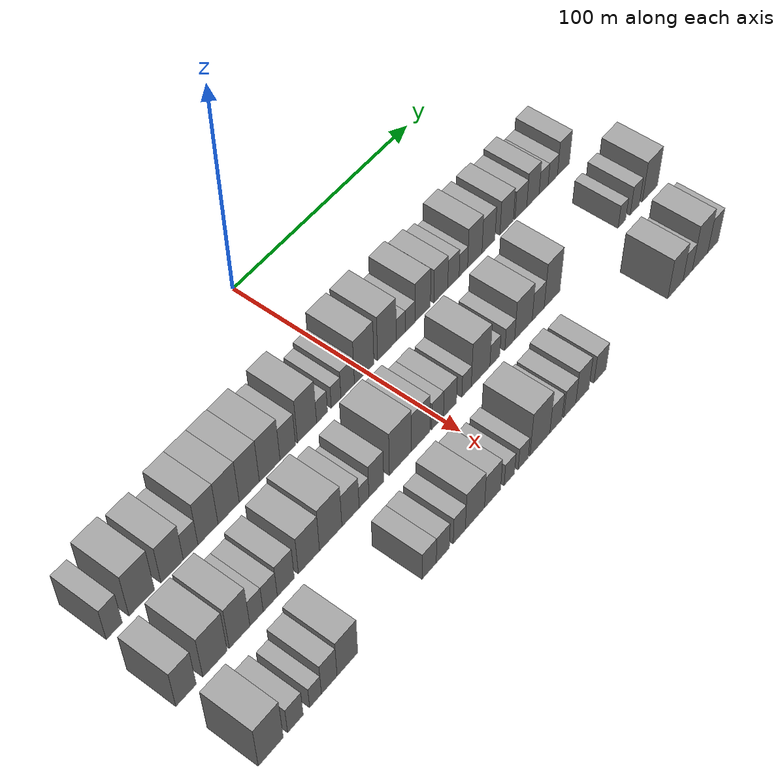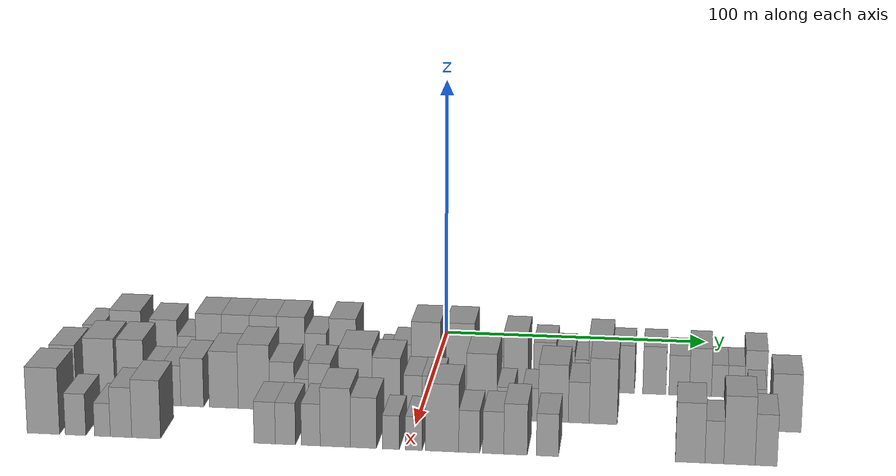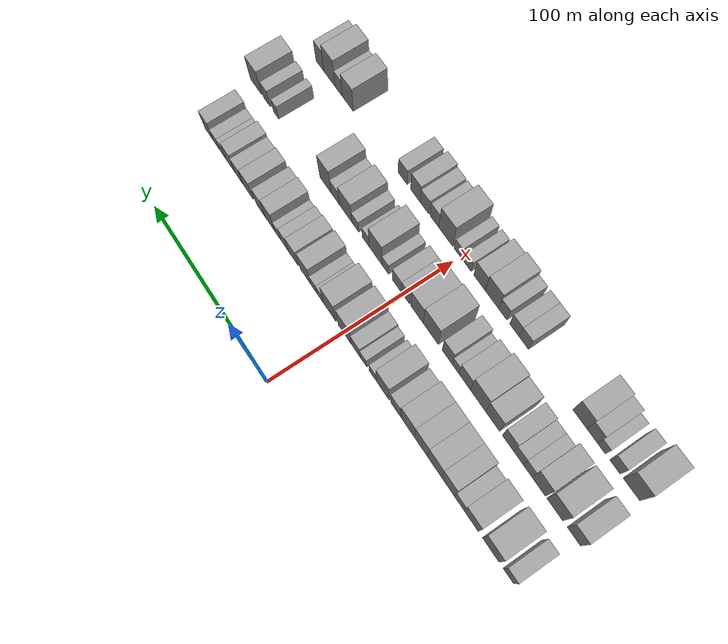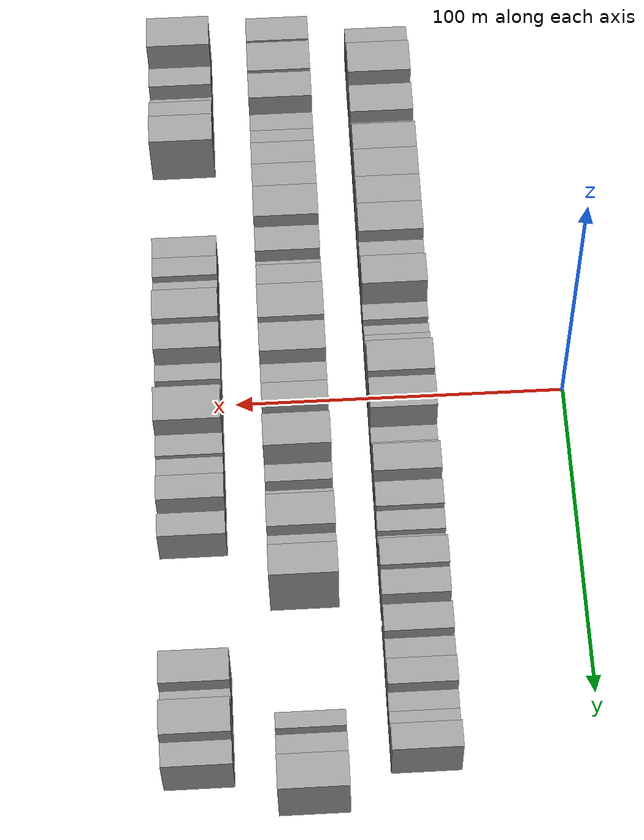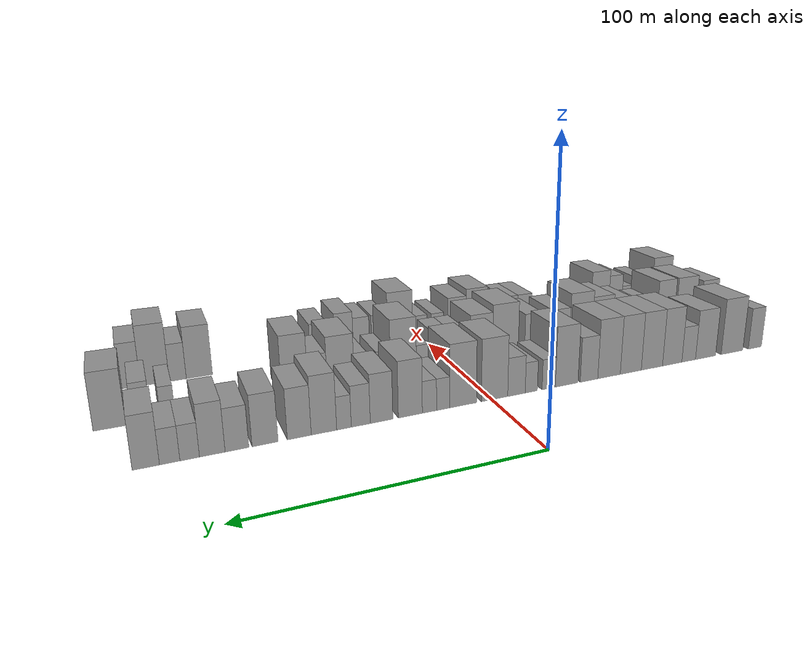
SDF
<sdf version="1.6">
 <world name="default">
  <model name="building_27">
   <static>1</static>
   <pose>50.0000 -124.7429 0 0.000000 0.000000 0.000000</pose>
   <link name="link">
    <pose>0 0 9.00 0 0 0</pose>
    <collision name="collision"><geometry><box><size>20.0000 7.2376 18.0000</size></box></geometry></collision>
    <visual name="visual">
     <cast_shadows>0</cast_shadows>
     <geometry><box><size>20.0000 7.2376 18.0000</size></box></geometry>
     <material>
      <script>
       <uri>model://grey_wall/materials/scripts</uri>
       <uri>model://grey_wall/materials/textures</uri>
       <name>vrc/grey_wall</name>
      </script>
     </material>
    </visual>
   </link>
  </model>
  <model name="building_28">
   <static>1</static>
   <pose>50.0000 -112.2866 0 0.000000 0.000000 0.000000</pose>
   <link name="link">
    <pose>0 0 12.00 0 0 0</pose>
    <collision name="collision"><geometry><box><size>20.0000 11.6752 24.0000</size></box></geometry></collision>
    <visual name="visual">
     <cast_shadows>0</cast_shadows>
     <geometry><box><size>20.0000 11.6752 24.0000</size></box></geometry>
     <material>
      <script>
       <uri>model://grey_wall/materials/scripts</uri>
       <uri>model://grey_wall/materials/textures</uri>
       <name>vrc/grey_wall</name>
      </script>
     </material>
    </visual>
   </link>
  </model>
  <model name="building_29">
   <static>1</static>
   <pose>50.0000 -98.2323 0 0.000000 0.000000 0.000000</pose>
   <link name="link">
    <pose>0 0 10.50 0 0 0</pose>
    <collision name="collision"><geometry><box><size>20.0000 10.4334 21.0000</size></box></geometry></collision>
    <visual name="visual">
     <cast_shadows>0</cast_shadows>
     <geometry><box><size>20.0000 10.4334 21.0000</size></box></geometry>
     <material>
      <script>
       <uri>model://grey_wall/materials/scripts</uri>
       <uri>model://grey_wall/materials/textures</uri>
       <name>vrc/grey_wall</name>
      </script>
     </material>
    </visual>
   </link>
  </model>
  <model name="building_30">
   <static>1</static>
   <pose>50.0000 -89.5312 0 0.000000 0.000000 0.000000</pose>
   <link name="link">
    <pose>0 0 7.50 0 0 0</pose>
    <collision name="collision"><geometry><box><size>20.0000 6.9687 15.0000</size></box></geometry></collision>
    <visual name="visual">
     <cast_shadows>0</cast_shadows>
     <geometry><box><size>20.0000 6.9687 15.0000</size></box></geometry>
     <material>
      <script>
       <uri>model://grey_wall/materials/scripts</uri>
       <uri>model://grey_wall/materials/textures</uri>
       <name>vrc/grey_wall</name>
      </script>
     </material>
    </visual>
   </link>
  </model>
  <model name="building_31">
   <static>1</static>
   <pose>50.0000 -81.2148 0 0.000000 0.000000 0.000000</pose>
   <link name="link">
    <pose>0 0 12.00 0 0 0</pose>
    <collision name="collision"><geometry><box><size>20.0000 9.6640 24.0000</size></box></geometry></collision>
    <visual name="visual">
     <cast_shadows>0</cast_shadows>
     <geometry><box><size>20.0000 9.6640 24.0000</size></box></geometry>
     <material>
      <script>
       <uri>model://grey_wall/materials/scripts</uri>
       <uri>model://grey_wall/materials/textures</uri>
       <name>vrc/grey_wall</name>
      </script>
     </material>
    </visual>
   </link>
  </model>
  <model name="building_32">
   <static>1</static>
   <pose>50.0000 -71.2039 0 0.000000 0.000000 0.000000</pose>
   <link name="link">
    <pose>0 0 12.00 0 0 0</pose>
    <collision name="collision"><geometry><box><size>20.0000 10.3579 24.0000</size></box></geometry></collision>
    <visual name="visual">
     <cast_shadows>0</cast_shadows>
     <geometry><box><size>20.0000 10.3579 24.0000</size></box></geometry>
     <material>
      <script>
       <uri>model://grey_wall/materials/scripts</uri>
       <uri>model://grey_wall/materials/textures</uri>
       <name>vrc/grey_wall</name>
      </script>
     </material>
    </visual>
   </link>
  </model>
  <model name="building_33">
   <static>1</static>
   <pose>50.0000 -61.0294 0 0.000000 0.000000 0.000000</pose>
   <link name="link">
    <pose>0 0 12.00 0 0 0</pose>
    <collision name="collision"><geometry><box><size>20.0000 9.9911 24.0000</size></box></geometry></collision>
    <visual name="visual">
     <cast_shadows>0</cast_shadows>
     <geometry><box><size>20.0000 9.9911 24.0000</size></box></geometry>
     <material>
      <script>
       <uri>model://grey_wall/materials/scripts</uri>
       <uri>model://grey_wall/materials/textures</uri>
       <name>vrc/grey_wall</name>
      </script>
     </material>
    </visual>
   </link>
  </model>
  <model name="building_34">
   <static>1</static>
   <pose>50.0000 -50.8119 0 0.000000 0.000000 0.000000</pose>
   <link name="link">
    <pose>0 0 12.00 0 0 0</pose>
    <collision name="collision"><geometry><box><size>20.0000 10.4438 24.0000</size></box></geometry></collision>
    <visual name="visual">
     <cast_shadows>0</cast_shadows>
     <geometry><box><size>20.0000 10.4438 24.0000</size></box></geometry>
     <material>
      <script>
       <uri>model://grey_wall/materials/scripts</uri>
       <uri>model://grey_wall/materials/textures</uri>
       <name>vrc/grey_wall</name>
      </script>
     </material>
    </visual>
   </link>
  </model>
  <model name="building_35">
   <static>1</static>
   <pose>50.0000 -41.6259 0 0.000000 0.000000 0.000000</pose>
   <link name="link">
    <pose>0 0 9.00 0 0 0</pose>
    <collision name="collision"><geometry><box><size>20.0000 7.9282 18.0000</size></box></geometry></collision>
    <visual name="visual">
     <cast_shadows>0</cast_shadows>
     <geometry><box><size>20.0000 7.9282 18.0000</size></box></geometry>
     <material>
      <script>
       <uri>model://grey_wall/materials/scripts</uri>
       <uri>model://grey_wall/materials/textures</uri>
       <name>vrc/grey_wall</name>
      </script>
     </material>
    </visual>
   </link>
  </model>
  <model name="building_36">
   <static>1</static>
   <pose>50.0000 -31.6741 0 0.000000 0.000000 0.000000</pose>
   <link name="link">
    <pose>0 0 12.00 0 0 0</pose>
    <collision name="collision"><geometry><box><size>20.0000 9.9756 24.0000</size></box></geometry></collision>
    <visual name="visual">
     <cast_shadows>0</cast_shadows>
     <geometry><box><size>20.0000 9.9756 24.0000</size></box></geometry>
     <material>
      <script>
       <uri>model://grey_wall/materials/scripts</uri>
       <uri>model://grey_wall/materials/textures</uri>
       <name>vrc/grey_wall</name>
      </script>
     </material>
    </visual>
   </link>
  </model>
  <model name="building_37">
   <static>1</static>
   <pose>50.0000 -23.8149 0 0.000000 0.000000 0.000000</pose>
   <link name="link">
    <pose>0 0 6.00 0 0 0</pose>
    <collision name="collision"><geometry><box><size>20.0000 5.7427 12.0000</size></box></geometry></collision>
    <visual name="visual">
     <cast_shadows>0</cast_shadows>
     <geometry><box><size>20.0000 5.7427 12.0000</size></box></geometry>
     <material>
      <script>
       <uri>model://grey_wall/materials/scripts</uri>
       <uri>model://grey_wall/materials/textures</uri>
       <name>vrc/grey_wall</name>
      </script>
     </material>
    </visual>
   </link>
  </model>
  <model name="building_38">
   <static>1</static>
   <pose>50.0000 -16.3730 0 0.000000 0.000000 0.000000</pose>
   <link name="link">
    <pose>0 0 6.00 0 0 0</pose>
    <collision name="collision"><geometry><box><size>20.0000 5.1412 12.0000</size></box></geometry></collision>
    <visual name="visual">
     <cast_shadows>0</cast_shadows>
     <geometry><box><size>20.0000 5.1412 12.0000</size></box></geometry>
     <material>
      <script>
       <uri>model://grey_wall/materials/scripts</uri>
       <uri>model://grey_wall/materials/textures</uri>
       <name>vrc/grey_wall</name>
      </script>
     </material>
    </visual>
   </link>
  </model>
  <model name="building_39">
   <static>1</static>
   <pose>50.0000 -10.1599 0 0.000000 0.000000 0.000000</pose>
   <link name="link">
    <pose>0 0 7.50 0 0 0</pose>
    <collision name="collision"><geometry><box><size>20.0000 7.2848 15.0000</size></box></geometry></collision>
    <visual name="visual">
     <cast_shadows>0</cast_shadows>
     <geometry><box><size>20.0000 7.2848 15.0000</size></box></geometry>
     <material>
      <script>
       <uri>model://grey_wall/materials/scripts</uri>
       <uri>model://grey_wall/materials/textures</uri>
       <name>vrc/grey_wall</name>
      </script>
     </material>
    </visual>
   </link>
  </model>
  <model name="building_40">
   <static>1</static>
   <pose>50.0000 -1.1866 0 0.000000 0.000000 0.000000</pose>
   <link name="link">
    <pose>0 0 12.00 0 0 0</pose>
    <collision name="collision"><geometry><box><size>20.0000 10.6619 24.0000</size></box></geometry></collision>
    <visual name="visual">
     <cast_shadows>0</cast_shadows>
     <geometry><box><size>20.0000 10.6619 24.0000</size></box></geometry>
     <material>
      <script>
       <uri>model://grey_wall/materials/scripts</uri>
       <uri>model://grey_wall/materials/textures</uri>
       <name>vrc/grey_wall</name>
      </script>
     </material>
    </visual>
   </link>
  </model>
  <model name="building_41">
   <static>1</static>
   <pose>50.0000 11.3441 0 0.000000 0.000000 0.000000</pose>
   <link name="link">
    <pose>0 0 12.00 0 0 0</pose>
    <collision name="collision"><geometry><box><size>20.0000 10.3995 24.0000</size></box></geometry></collision>
    <visual name="visual">
     <cast_shadows>0</cast_shadows>
     <geometry><box><size>20.0000 10.3995 24.0000</size></box></geometry>
     <material>
      <script>
       <uri>model://grey_wall/materials/scripts</uri>
       <uri>model://grey_wall/materials/textures</uri>
       <name>vrc/grey_wall</name>
      </script>
     </material>
    </visual>
   </link>
  </model>
  <model name="building_42">
   <static>1</static>
   <pose>50.0000 19.1152 0 0.000000 0.000000 0.000000</pose>
   <link name="link">
    <pose>0 0 6.00 0 0 0</pose>
    <collision name="collision"><geometry><box><size>20.0000 5.1427 12.0000</size></box></geometry></collision>
    <visual name="visual">
     <cast_shadows>0</cast_shadows>
     <geometry><box><size>20.0000 5.1427 12.0000</size></box></geometry>
     <material>
      <script>
       <uri>model://grey_wall/materials/scripts</uri>
       <uri>model://grey_wall/materials/textures</uri>
       <name>vrc/grey_wall</name>
      </script>
     </material>
    </visual>
   </link>
  </model>
  <model name="building_43">
   <static>1</static>
   <pose>50.0000 24.3787 0 0.000000 0.000000 0.000000</pose>
   <link name="link">
    <pose>0 0 6.00 0 0 0</pose>
    <collision name="collision"><geometry><box><size>20.0000 5.3844 12.0000</size></box></geometry></collision>
    <visual name="visual">
     <cast_shadows>0</cast_shadows>
     <geometry><box><size>20.0000 5.3844 12.0000</size></box></geometry>
     <material>
      <script>
       <uri>model://grey_wall/materials/scripts</uri>
       <uri>model://grey_wall/materials/textures</uri>
       <name>vrc/grey_wall</name>
      </script>
     </material>
    </visual>
   </link>
  </model>
  <model name="building_44">
   <static>1</static>
   <pose>50.0000 31.5155 0 0.000000 0.000000 0.000000</pose>
   <link name="link">
    <pose>0 0 10.50 0 0 0</pose>
    <collision name="collision"><geometry><box><size>20.0000 8.8890 21.0000</size></box></geometry></collision>
    <visual name="visual">
     <cast_shadows>0</cast_shadows>
     <geometry><box><size>20.0000 8.8890 21.0000</size></box></geometry>
     <material>
      <script>
       <uri>model://grey_wall/materials/scripts</uri>
       <uri>model://grey_wall/materials/textures</uri>
       <name>vrc/grey_wall</name>
      </script>
     </material>
    </visual>
   </link>
  </model>
  <model name="building_45">
   <static>1</static>
   <pose>50.0000 42.0223 0 0.000000 0.000000 0.000000</pose>
   <link name="link">
    <pose>0 0 9.00 0 0 0</pose>
    <collision name="collision"><geometry><box><size>20.0000 8.1246 18.0000</size></box></geometry></collision>
    <visual name="visual">
     <cast_shadows>0</cast_shadows>
     <geometry><box><size>20.0000 8.1246 18.0000</size></box></geometry>
     <material>
      <script>
       <uri>model://grey_wall/materials/scripts</uri>
       <uri>model://grey_wall/materials/textures</uri>
       <name>vrc/grey_wall</name>
      </script>
     </material>
    </visual>
   </link>
  </model>
  <model name="building_46">
   <static>1</static>
   <pose>50.0000 49.4293 0 0.000000 0.000000 0.000000</pose>
   <link name="link">
    <pose>0 0 7.50 0 0 0</pose>
    <collision name="collision"><geometry><box><size>20.0000 6.6894 15.0000</size></box></geometry></collision>
    <visual name="visual">
     <cast_shadows>0</cast_shadows>
     <geometry><box><size>20.0000 6.6894 15.0000</size></box></geometry>
     <material>
      <script>
       <uri>model://grey_wall/materials/scripts</uri>
       <uri>model://grey_wall/materials/textures</uri>
       <name>vrc/grey_wall</name>
      </script>
     </material>
    </visual>
   </link>
  </model>
  <model name="building_47">
   <static>1</static>
   <pose>50.0000 55.2964 0 0.000000 0.000000 0.000000</pose>
   <link name="link">
    <pose>0 0 6.00 0 0 0</pose>
    <collision name="collision"><geometry><box><size>20.0000 5.0448 12.0000</size></box></geometry></collision>
    <visual name="visual">
     <cast_shadows>0</cast_shadows>
     <geometry><box><size>20.0000 5.0448 12.0000</size></box></geometry>
     <material>
      <script>
       <uri>model://grey_wall/materials/scripts</uri>
       <uri>model://grey_wall/materials/textures</uri>
       <name>vrc/grey_wall</name>
      </script>
     </material>
    </visual>
   </link>
  </model>
  <model name="building_48">
   <static>1</static>
   <pose>50.0000 62.1322 0 0.000000 0.000000 0.000000</pose>
   <link name="link">
    <pose>0 0 10.50 0 0 0</pose>
    <collision name="collision"><geometry><box><size>20.0000 8.6267 21.0000</size></box></geometry></collision>
    <visual name="visual">
     <cast_shadows>0</cast_shadows>
     <geometry><box><size>20.0000 8.6267 21.0000</size></box></geometry>
     <material>
      <script>
       <uri>model://grey_wall/materials/scripts</uri>
       <uri>model://grey_wall/materials/textures</uri>
       <name>vrc/grey_wall</name>
      </script>
     </material>
    </visual>
   </link>
  </model>
  <model name="building_49">
   <static>1</static>
   <pose>50.0000 70.4046 0 0.000000 0.000000 0.000000</pose>
   <link name="link">
    <pose>0 0 9.00 0 0 0</pose>
    <collision name="collision"><geometry><box><size>20.0000 7.9182 18.0000</size></box></geometry></collision>
    <visual name="visual">
     <cast_shadows>0</cast_shadows>
     <geometry><box><size>20.0000 7.9182 18.0000</size></box></geometry>
     <material>
      <script>
       <uri>model://grey_wall/materials/scripts</uri>
       <uri>model://grey_wall/materials/textures</uri>
       <name>vrc/grey_wall</name>
      </script>
     </material>
    </visual>
   </link>
  </model>
  <model name="building_50">
   <static>1</static>
   <pose>50.0000 81.5215 0 0.000000 0.000000 0.000000</pose>
   <link name="link">
    <pose>0 0 9.00 0 0 0</pose>
    <collision name="collision"><geometry><box><size>20.0000 8.3154 18.0000</size></box></geometry></collision>
    <visual name="visual">
     <cast_shadows>0</cast_shadows>
     <geometry><box><size>20.0000 8.3154 18.0000</size></box></geometry>
     <material>
      <script>
       <uri>model://grey_wall/materials/scripts</uri>
       <uri>model://grey_wall/materials/textures</uri>
       <name>vrc/grey_wall</name>
      </script>
     </material>
    </visual>
   </link>
  </model>
  <model name="building_51">
   <static>1</static>
   <pose>50.0000 90.3698 0 0.000000 0.000000 0.000000</pose>
   <link name="link">
    <pose>0 0 7.50 0 0 0</pose>
    <collision name="collision"><geometry><box><size>20.0000 7.3812 15.0000</size></box></geometry></collision>
    <visual name="visual">
     <cast_shadows>0</cast_shadows>
     <geometry><box><size>20.0000 7.3812 15.0000</size></box></geometry>
     <material>
      <script>
       <uri>model://grey_wall/materials/scripts</uri>
       <uri>model://grey_wall/materials/textures</uri>
       <name>vrc/grey_wall</name>
      </script>
     </material>
    </visual>
   </link>
  </model>
  <model name="building_52">
   <static>1</static>
   <pose>50.0000 97.9597 0 0.000000 0.000000 0.000000</pose>
   <link name="link">
    <pose>0 0 9.00 0 0 0</pose>
    <collision name="collision"><geometry><box><size>20.0000 7.7986 18.0000</size></box></geometry></collision>
    <visual name="visual">
     <cast_shadows>0</cast_shadows>
     <geometry><box><size>20.0000 7.7986 18.0000</size></box></geometry>
     <material>
      <script>
       <uri>model://grey_wall/materials/scripts</uri>
       <uri>model://grey_wall/materials/textures</uri>
       <name>vrc/grey_wall</name>
      </script>
     </material>
    </visual>
   </link>
  </model>
  <model name="building_53">
   <static>1</static>
   <pose>50.0000 104.7630 0 0.000000 0.000000 0.000000</pose>
   <link name="link">
    <pose>0 0 6.00 0 0 0</pose>
    <collision name="collision"><geometry><box><size>20.0000 5.8080 12.0000</size></box></geometry></collision>
    <visual name="visual">
     <cast_shadows>0</cast_shadows>
     <geometry><box><size>20.0000 5.8080 12.0000</size></box></geometry>
     <material>
      <script>
       <uri>model://grey_wall/materials/scripts</uri>
       <uri>model://grey_wall/materials/textures</uri>
       <name>vrc/grey_wall</name>
      </script>
     </material>
    </visual>
   </link>
  </model>
  <model name="building_54">
   <static>1</static>
   <pose>50.0000 110.6468 0 0.000000 0.000000 0.000000</pose>
   <link name="link">
    <pose>0 0 6.00 0 0 0</pose>
    <collision name="collision"><geometry><box><size>20.0000 5.9596 12.0000</size></box></geometry></collision>
    <visual name="visual">
     <cast_shadows>0</cast_shadows>
     <geometry><box><size>20.0000 5.9596 12.0000</size></box></geometry>
     <material>
      <script>
       <uri>model://grey_wall/materials/scripts</uri>
       <uri>model://grey_wall/materials/textures</uri>
       <name>vrc/grey_wall</name>
      </script>
     </material>
    </visual>
   </link>
  </model>
  <model name="building_55">
   <static>1</static>
   <pose>50.0000 117.5337 0 0.000000 0.000000 0.000000</pose>
   <link name="link">
    <pose>0 0 9.00 0 0 0</pose>
    <collision name="collision"><geometry><box><size>20.0000 7.8141 18.0000</size></box></geometry></collision>
    <visual name="visual">
     <cast_shadows>0</cast_shadows>
     <geometry><box><size>20.0000 7.8141 18.0000</size></box></geometry>
     <material>
      <script>
       <uri>model://grey_wall/materials/scripts</uri>
       <uri>model://grey_wall/materials/textures</uri>
       <name>vrc/grey_wall</name>
      </script>
     </material>
    </visual>
   </link>
  </model>
  <model name="building_104">
   <static>1</static>
   <pose>82.0000 -127.3911 0 0.000000 0.000000 0.000000</pose>
   <link name="link">
    <pose>0 0 10.50 0 0 0</pose>
    <collision name="collision"><geometry><box><size>20.0000 9.1930 21.0000</size></box></geometry></collision>
    <visual name="visual">
     <cast_shadows>0</cast_shadows>
     <geometry><box><size>20.0000 9.1930 21.0000</size></box></geometry>
     <material>
      <script>
       <uri>model://grey_wall/materials/scripts</uri>
       <uri>model://grey_wall/materials/textures</uri>
       <name>vrc/grey_wall</name>
      </script>
     </material>
    </visual>
   </link>
  </model>
  <model name="building_105">
   <static>1</static>
   <pose>82.0000 -114.2026 0 0.000000 0.000000 0.000000</pose>
   <link name="link">
    <pose>0 0 12.00 0 0 0</pose>
    <collision name="collision"><geometry><box><size>20.0000 11.1840 24.0000</size></box></geometry></collision>
    <visual name="visual">
     <cast_shadows>0</cast_shadows>
     <geometry><box><size>20.0000 11.1840 24.0000</size></box></geometry>
     <material>
      <script>
       <uri>model://grey_wall/materials/scripts</uri>
       <uri>model://grey_wall/materials/textures</uri>
       <name>vrc/grey_wall</name>
      </script>
     </material>
    </visual>
   </link>
  </model>
  <model name="building_106">
   <static>1</static>
   <pose>82.0000 -102.7781 0 0.000000 0.000000 0.000000</pose>
   <link name="link">
    <pose>0 0 12.00 0 0 0</pose>
    <collision name="collision"><geometry><box><size>20.0000 9.6650 24.0000</size></box></geometry></collision>
    <visual name="visual">
     <cast_shadows>0</cast_shadows>
     <geometry><box><size>20.0000 9.6650 24.0000</size></box></geometry>
     <material>
      <script>
       <uri>model://grey_wall/materials/scripts</uri>
       <uri>model://grey_wall/materials/textures</uri>
       <name>vrc/grey_wall</name>
      </script>
     </material>
    </visual>
   </link>
  </model>
  <model name="building_107">
   <static>1</static>
   <pose>82.0000 -94.7876 0 0.000000 0.000000 0.000000</pose>
   <link name="link">
    <pose>0 0 7.50 0 0 0</pose>
    <collision name="collision"><geometry><box><size>20.0000 6.3161 15.0000</size></box></geometry></collision>
    <visual name="visual">
     <cast_shadows>0</cast_shadows>
     <geometry><box><size>20.0000 6.3161 15.0000</size></box></geometry>
     <material>
      <script>
       <uri>model://grey_wall/materials/scripts</uri>
       <uri>model://grey_wall/materials/textures</uri>
       <name>vrc/grey_wall</name>
      </script>
     </material>
    </visual>
   </link>
  </model>
  <model name="building_108">
   <static>1</static>
   <pose>82.0000 -88.2394 0 0.000000 0.000000 0.000000</pose>
   <link name="link">
    <pose>0 0 7.50 0 0 0</pose>
    <collision name="collision"><geometry><box><size>20.0000 6.7803 15.0000</size></box></geometry></collision>
    <visual name="visual">
     <cast_shadows>0</cast_shadows>
     <geometry><box><size>20.0000 6.7803 15.0000</size></box></geometry>
     <material>
      <script>
       <uri>model://grey_wall/materials/scripts</uri>
       <uri>model://grey_wall/materials/textures</uri>
       <name>vrc/grey_wall</name>
      </script>
     </material>
    </visual>
   </link>
  </model>
  <model name="building_109">
   <static>1</static>
   <pose>82.0000 -80.7230 0 0.000000 0.000000 0.000000</pose>
   <link name="link">
    <pose>0 0 9.00 0 0 0</pose>
    <collision name="collision"><geometry><box><size>20.0000 8.2525 18.0000</size></box></geometry></collision>
    <visual name="visual">
     <cast_shadows>0</cast_shadows>
     <geometry><box><size>20.0000 8.2525 18.0000</size></box></geometry>
     <material>
      <script>
       <uri>model://grey_wall/materials/scripts</uri>
       <uri>model://grey_wall/materials/textures</uri>
       <name>vrc/grey_wall</name>
      </script>
     </material>
    </visual>
   </link>
  </model>
  <model name="building_110">
   <static>1</static>
   <pose>82.0000 -69.3769 0 0.000000 0.000000 0.000000</pose>
   <link name="link">
    <pose>0 0 10.50 0 0 0</pose>
    <collision name="collision"><geometry><box><size>20.0000 10.4397 21.0000</size></box></geometry></collision>
    <visual name="visual">
     <cast_shadows>0</cast_shadows>
     <geometry><box><size>20.0000 10.4397 21.0000</size></box></geometry>
     <material>
      <script>
       <uri>model://grey_wall/materials/scripts</uri>
       <uri>model://grey_wall/materials/textures</uri>
       <name>vrc/grey_wall</name>
      </script>
     </material>
    </visual>
   </link>
  </model>
  <model name="building_111">
   <static>1</static>
   <pose>82.0000 -58.5042 0 0.000000 0.000000 0.000000</pose>
   <link name="link">
    <pose>0 0 12.00 0 0 0</pose>
    <collision name="collision"><geometry><box><size>20.0000 11.3055 24.0000</size></box></geometry></collision>
    <visual name="visual">
     <cast_shadows>0</cast_shadows>
     <geometry><box><size>20.0000 11.3055 24.0000</size></box></geometry>
     <material>
      <script>
       <uri>model://grey_wall/materials/scripts</uri>
       <uri>model://grey_wall/materials/textures</uri>
       <name>vrc/grey_wall</name>
      </script>
     </material>
    </visual>
   </link>
  </model>
  <model name="building_112">
   <static>1</static>
   <pose>82.0000 -48.4454 0 0.000000 0.000000 0.000000</pose>
   <link name="link">
    <pose>0 0 9.00 0 0 0</pose>
    <collision name="collision"><geometry><box><size>20.0000 8.8121 18.0000</size></box></geometry></collision>
    <visual name="visual">
     <cast_shadows>0</cast_shadows>
     <geometry><box><size>20.0000 8.8121 18.0000</size></box></geometry>
     <material>
      <script>
       <uri>model://grey_wall/materials/scripts</uri>
       <uri>model://grey_wall/materials/textures</uri>
       <name>vrc/grey_wall</name>
      </script>
     </material>
    </visual>
   </link>
  </model>
  <model name="building_113">
   <static>1</static>
   <pose>82.0000 -41.4940 0 0.000000 0.000000 0.000000</pose>
   <link name="link">
    <pose>0 0 6.00 0 0 0</pose>
    <collision name="collision"><geometry><box><size>20.0000 5.0907 12.0000</size></box></geometry></collision>
    <visual name="visual">
     <cast_shadows>0</cast_shadows>
     <geometry><box><size>20.0000 5.0907 12.0000</size></box></geometry>
     <material>
      <script>
       <uri>model://grey_wall/materials/scripts</uri>
       <uri>model://grey_wall/materials/textures</uri>
       <name>vrc/grey_wall</name>
      </script>
     </material>
    </visual>
   </link>
  </model>
  <model name="building_114">
   <static>1</static>
   <pose>82.0000 -35.0647 0 0.000000 0.000000 0.000000</pose>
   <link name="link">
    <pose>0 0 9.00 0 0 0</pose>
    <collision name="collision"><geometry><box><size>20.0000 7.7679 18.0000</size></box></geometry></collision>
    <visual name="visual">
     <cast_shadows>0</cast_shadows>
     <geometry><box><size>20.0000 7.7679 18.0000</size></box></geometry>
     <material>
      <script>
       <uri>model://grey_wall/materials/scripts</uri>
       <uri>model://grey_wall/materials/textures</uri>
       <name>vrc/grey_wall</name>
      </script>
     </material>
    </visual>
   </link>
  </model>
  <model name="building_115">
   <static>1</static>
   <pose>82.0000 -22.2854 0 0.000000 0.000000 0.000000</pose>
   <link name="link">
    <pose>0 0 12.00 0 0 0</pose>
    <collision name="collision"><geometry><box><size>20.0000 11.7908 24.0000</size></box></geometry></collision>
    <visual name="visual">
     <cast_shadows>0</cast_shadows>
     <geometry><box><size>20.0000 11.7908 24.0000</size></box></geometry>
     <material>
      <script>
       <uri>model://grey_wall/materials/scripts</uri>
       <uri>model://grey_wall/materials/textures</uri>
       <name>vrc/grey_wall</name>
      </script>
     </material>
    </visual>
   </link>
  </model>
  <model name="building_116">
   <static>1</static>
   <pose>82.0000 -11.3780 0 0.000000 0.000000 0.000000</pose>
   <link name="link">
    <pose>0 0 10.50 0 0 0</pose>
    <collision name="collision"><geometry><box><size>20.0000 10.0240 21.0000</size></box></geometry></collision>
    <visual name="visual">
     <cast_shadows>0</cast_shadows>
     <geometry><box><size>20.0000 10.0240 21.0000</size></box></geometry>
     <material>
      <script>
       <uri>model://grey_wall/materials/scripts</uri>
       <uri>model://grey_wall/materials/textures</uri>
       <name>vrc/grey_wall</name>
      </script>
     </material>
    </visual>
   </link>
  </model>
  <model name="building_117">
   <static>1</static>
   <pose>82.0000 -2.1191 0 0.000000 0.000000 0.000000</pose>
   <link name="link">
    <pose>0 0 7.50 0 0 0</pose>
    <collision name="collision"><geometry><box><size>20.0000 6.4938 15.0000</size></box></geometry></collision>
    <visual name="visual">
     <cast_shadows>0</cast_shadows>
     <geometry><box><size>20.0000 6.4938 15.0000</size></box></geometry>
     <material>
      <script>
       <uri>model://grey_wall/materials/scripts</uri>
       <uri>model://grey_wall/materials/textures</uri>
       <name>vrc/grey_wall</name>
      </script>
     </material>
    </visual>
   </link>
  </model>
  <model name="building_118">
   <static>1</static>
   <pose>82.0000 4.7765 0 0.000000 0.000000 0.000000</pose>
   <link name="link">
    <pose>0 0 7.50 0 0 0</pose>
    <collision name="collision"><geometry><box><size>20.0000 7.2974 15.0000</size></box></geometry></collision>
    <visual name="visual">
     <cast_shadows>0</cast_shadows>
     <geometry><box><size>20.0000 7.2974 15.0000</size></box></geometry>
     <material>
      <script>
       <uri>model://grey_wall/materials/scripts</uri>
       <uri>model://grey_wall/materials/textures</uri>
       <name>vrc/grey_wall</name>
      </script>
     </material>
    </visual>
   </link>
  </model>
  <model name="building_119">
   <static>1</static>
   <pose>82.0000 14.0890 0 0.000000 0.000000 0.000000</pose>
   <link name="link">
    <pose>0 0 6.00 0 0 0</pose>
    <collision name="collision"><geometry><box><size>20.0000 5.3276 12.0000</size></box></geometry></collision>
    <visual name="visual">
     <cast_shadows>0</cast_shadows>
     <geometry><box><size>20.0000 5.3276 12.0000</size></box></geometry>
     <material>
      <script>
       <uri>model://grey_wall/materials/scripts</uri>
       <uri>model://grey_wall/materials/textures</uri>
       <name>vrc/grey_wall</name>
      </script>
     </material>
    </visual>
   </link>
  </model>
  <model name="building_120">
   <static>1</static>
   <pose>82.0000 22.0814 0 0.000000 0.000000 0.000000</pose>
   <link name="link">
    <pose>0 0 12.00 0 0 0</pose>
    <collision name="collision"><geometry><box><size>20.0000 10.6571 24.0000</size></box></geometry></collision>
    <visual name="visual">
     <cast_shadows>0</cast_shadows>
     <geometry><box><size>20.0000 10.6571 24.0000</size></box></geometry>
     <material>
      <script>
       <uri>model://grey_wall/materials/scripts</uri>
       <uri>model://grey_wall/materials/textures</uri>
       <name>vrc/grey_wall</name>
      </script>
     </material>
    </visual>
   </link>
  </model>
  <model name="building_121">
   <static>1</static>
   <pose>82.0000 30.2890 0 0.000000 0.000000 0.000000</pose>
   <link name="link">
    <pose>0 0 6.00 0 0 0</pose>
    <collision name="collision"><geometry><box><size>20.0000 5.7581 12.0000</size></box></geometry></collision>
    <visual name="visual">
     <cast_shadows>0</cast_shadows>
     <geometry><box><size>20.0000 5.7581 12.0000</size></box></geometry>
     <material>
      <script>
       <uri>model://grey_wall/materials/scripts</uri>
       <uri>model://grey_wall/materials/textures</uri>
       <name>vrc/grey_wall</name>
      </script>
     </material>
    </visual>
   </link>
  </model>
  <model name="building_122">
   <static>1</static>
   <pose>82.0000 39.0336 0 0.000000 0.000000 0.000000</pose>
   <link name="link">
    <pose>0 0 6.00 0 0 0</pose>
    <collision name="collision"><geometry><box><size>20.0000 5.7312 12.0000</size></box></geometry></collision>
    <visual name="visual">
     <cast_shadows>0</cast_shadows>
     <geometry><box><size>20.0000 5.7312 12.0000</size></box></geometry>
     <material>
      <script>
       <uri>model://grey_wall/materials/scripts</uri>
       <uri>model://grey_wall/materials/textures</uri>
       <name>vrc/grey_wall</name>
      </script>
     </material>
    </visual>
   </link>
  </model>
  <model name="building_123">
   <static>1</static>
   <pose>82.0000 47.1243 0 0.000000 0.000000 0.000000</pose>
   <link name="link">
    <pose>0 0 10.50 0 0 0</pose>
    <collision name="collision"><geometry><box><size>20.0000 10.4504 21.0000</size></box></geometry></collision>
    <visual name="visual">
     <cast_shadows>0</cast_shadows>
     <geometry><box><size>20.0000 10.4504 21.0000</size></box></geometry>
     <material>
      <script>
       <uri>model://grey_wall/materials/scripts</uri>
       <uri>model://grey_wall/materials/textures</uri>
       <name>vrc/grey_wall</name>
      </script>
     </material>
    </visual>
   </link>
  </model>
  <model name="building_124">
   <static>1</static>
   <pose>82.0000 55.9813 0 0.000000 0.000000 0.000000</pose>
   <link name="link">
    <pose>0 0 7.50 0 0 0</pose>
    <collision name="collision"><geometry><box><size>20.0000 7.2635 15.0000</size></box></geometry></collision>
    <visual name="visual">
     <cast_shadows>0</cast_shadows>
     <geometry><box><size>20.0000 7.2635 15.0000</size></box></geometry>
     <material>
      <script>
       <uri>model://grey_wall/materials/scripts</uri>
       <uri>model://grey_wall/materials/textures</uri>
       <name>vrc/grey_wall</name>
      </script>
     </material>
    </visual>
   </link>
  </model>
  <model name="building_125">
   <static>1</static>
   <pose>82.0000 64.4504 0 0.000000 0.000000 0.000000</pose>
   <link name="link">
    <pose>0 0 12.00 0 0 0</pose>
    <collision name="collision"><geometry><box><size>20.0000 9.6747 24.0000</size></box></geometry></collision>
    <visual name="visual">
     <cast_shadows>0</cast_shadows>
     <geometry><box><size>20.0000 9.6747 24.0000</size></box></geometry>
     <material>
      <script>
       <uri>model://grey_wall/materials/scripts</uri>
       <uri>model://grey_wall/materials/textures</uri>
       <name>vrc/grey_wall</name>
      </script>
     </material>
    </visual>
   </link>
  </model>
  <model name="building_126">
   <static>1</static>
   <pose>82.0000 108.6008 0 0.000000 0.000000 0.000000</pose>
   <link name="link">
    <pose>0 0 6.00 0 0 0</pose>
    <collision name="collision"><geometry><box><size>20.0000 4.8754 12.0000</size></box></geometry></collision>
    <visual name="visual">
     <cast_shadows>0</cast_shadows>
     <geometry><box><size>20.0000 4.8754 12.0000</size></box></geometry>
     <material>
      <script>
       <uri>model://grey_wall/materials/scripts</uri>
       <uri>model://grey_wall/materials/textures</uri>
       <name>vrc/grey_wall</name>
      </script>
     </material>
    </visual>
   </link>
  </model>
  <model name="building_127">
   <static>1</static>
   <pose>82.0000 117.0659 0 0.000000 0.000000 0.000000</pose>
   <link name="link">
    <pose>0 0 7.50 0 0 0</pose>
    <collision name="collision"><geometry><box><size>20.0000 6.0547 15.0000</size></box></geometry></collision>
    <visual name="visual">
     <cast_shadows>0</cast_shadows>
     <geometry><box><size>20.0000 6.0547 15.0000</size></box></geometry>
     <material>
      <script>
       <uri>model://grey_wall/materials/scripts</uri>
       <uri>model://grey_wall/materials/textures</uri>
       <name>vrc/grey_wall</name>
      </script>
     </material>
    </visual>
   </link>
  </model>
  <model name="building_128">
   <static>1</static>
   <pose>82.0000 127.1640 0 0.000000 0.000000 0.000000</pose>
   <link name="link">
    <pose>0 0 10.50 0 0 0</pose>
    <collision name="collision"><geometry><box><size>20.0000 10.1416 21.0000</size></box></geometry></collision>
    <visual name="visual">
     <cast_shadows>0</cast_shadows>
     <geometry><box><size>20.0000 10.1416 21.0000</size></box></geometry>
     <material>
      <script>
       <uri>model://grey_wall/materials/scripts</uri>
       <uri>model://grey_wall/materials/textures</uri>
       <name>vrc/grey_wall</name>
      </script>
     </material>
    </visual>
   </link>
  </model>
  <model name="building_177">
   <static>1</static>
   <pose>114.0000 -125.7358 0 0.000000 0.000000 0.000000</pose>
   <link name="link">
    <pose>0 0 12.00 0 0 0</pose>
    <collision name="collision"><geometry><box><size>20.0000 11.3860 24.0000</size></box></geometry></collision>
    <visual name="visual">
     <cast_shadows>0</cast_shadows>
     <geometry><box><size>20.0000 11.3860 24.0000</size></box></geometry>
     <material>
      <script>
       <uri>model://grey_wall/materials/scripts</uri>
       <uri>model://grey_wall/materials/textures</uri>
       <name>vrc/grey_wall</name>
      </script>
     </material>
    </visual>
   </link>
  </model>
  <model name="building_178">
   <static>1</static>
   <pose>114.0000 -114.4228 0 0.000000 0.000000 0.000000</pose>
   <link name="link">
    <pose>0 0 7.50 0 0 0</pose>
    <collision name="collision"><geometry><box><size>20.0000 7.2400 15.0000</size></box></geometry></collision>
    <visual name="visual">
     <cast_shadows>0</cast_shadows>
     <geometry><box><size>20.0000 7.2400 15.0000</size></box></geometry>
     <material>
      <script>
       <uri>model://grey_wall/materials/scripts</uri>
       <uri>model://grey_wall/materials/textures</uri>
       <name>vrc/grey_wall</name>
      </script>
     </material>
    </visual>
   </link>
  </model>
  <model name="building_179">
   <static>1</static>
   <pose>114.0000 -105.0271 0 0.000000 0.000000 0.000000</pose>
   <link name="link">
    <pose>0 0 6.00 0 0 0</pose>
    <collision name="collision"><geometry><box><size>20.0000 5.5513 12.0000</size></box></geometry></collision>
    <visual name="visual">
     <cast_shadows>0</cast_shadows>
     <geometry><box><size>20.0000 5.5513 12.0000</size></box></geometry>
     <material>
      <script>
       <uri>model://grey_wall/materials/scripts</uri>
       <uri>model://grey_wall/materials/textures</uri>
       <name>vrc/grey_wall</name>
      </script>
     </material>
    </visual>
   </link>
  </model>
  <model name="building_180">
   <static>1</static>
   <pose>114.0000 -98.5087 0 0.000000 0.000000 0.000000</pose>
   <link name="link">
    <pose>0 0 9.00 0 0 0</pose>
    <collision name="collision"><geometry><box><size>20.0000 7.4856 18.0000</size></box></geometry></collision>
    <visual name="visual">
     <cast_shadows>0</cast_shadows>
     <geometry><box><size>20.0000 7.4856 18.0000</size></box></geometry>
     <material>
      <script>
       <uri>model://grey_wall/materials/scripts</uri>
       <uri>model://grey_wall/materials/textures</uri>
       <name>vrc/grey_wall</name>
      </script>
     </material>
    </visual>
   </link>
  </model>
  <model name="building_181">
   <static>1</static>
   <pose>114.0000 -89.7515 0 0.000000 0.000000 0.000000</pose>
   <link name="link">
    <pose>0 0 10.50 0 0 0</pose>
    <collision name="collision"><geometry><box><size>20.0000 10.0289 21.0000</size></box></geometry></collision>
    <visual name="visual">
     <cast_shadows>0</cast_shadows>
     <geometry><box><size>20.0000 10.0289 21.0000</size></box></geometry>
     <material>
      <script>
       <uri>model://grey_wall/materials/scripts</uri>
       <uri>model://grey_wall/materials/textures</uri>
       <name>vrc/grey_wall</name>
      </script>
     </material>
    </visual>
   </link>
  </model>
  <model name="building_182">
   <static>1</static>
   <pose>114.0000 -48.7349 0 0.000000 0.000000 0.000000</pose>
   <link name="link">
    <pose>0 0 7.50 0 0 0</pose>
    <collision name="collision"><geometry><box><size>20.0000 7.3347 15.0000</size></box></geometry></collision>
    <visual name="visual">
     <cast_shadows>0</cast_shadows>
     <geometry><box><size>20.0000 7.3347 15.0000</size></box></geometry>
     <material>
      <script>
       <uri>model://grey_wall/materials/scripts</uri>
       <uri>model://grey_wall/materials/textures</uri>
       <name>vrc/grey_wall</name>
      </script>
     </material>
    </visual>
   </link>
  </model>
  <model name="building_183">
   <static>1</static>
   <pose>114.0000 -41.6020 0 0.000000 0.000000 0.000000</pose>
   <link name="link">
    <pose>0 0 7.50 0 0 0</pose>
    <collision name="collision"><geometry><box><size>20.0000 6.9311 15.0000</size></box></geometry></collision>
    <visual name="visual">
     <cast_shadows>0</cast_shadows>
     <geometry><box><size>20.0000 6.9311 15.0000</size></box></geometry>
     <material>
      <script>
       <uri>model://grey_wall/materials/scripts</uri>
       <uri>model://grey_wall/materials/textures</uri>
       <name>vrc/grey_wall</name>
      </script>
     </material>
    </visual>
   </link>
  </model>
  <model name="building_184">
   <static>1</static>
   <pose>114.0000 -32.9113 0 0.000000 0.000000 0.000000</pose>
   <link name="link">
    <pose>0 0 7.50 0 0 0</pose>
    <collision name="collision"><geometry><box><size>20.0000 6.4503 15.0000</size></box></geometry></collision>
    <visual name="visual">
     <cast_shadows>0</cast_shadows>
     <geometry><box><size>20.0000 6.4503 15.0000</size></box></geometry>
     <material>
      <script>
       <uri>model://grey_wall/materials/scripts</uri>
       <uri>model://grey_wall/materials/textures</uri>
       <name>vrc/grey_wall</name>
      </script>
     </material>
    </visual>
   </link>
  </model>
  <model name="building_185">
   <static>1</static>
   <pose>114.0000 -24.5173 0 0.000000 0.000000 0.000000</pose>
   <link name="link">
    <pose>0 0 10.50 0 0 0</pose>
    <collision name="collision"><geometry><box><size>20.0000 10.3377 21.0000</size></box></geometry></collision>
    <visual name="visual">
     <cast_shadows>0</cast_shadows>
     <geometry><box><size>20.0000 10.3377 21.0000</size></box></geometry>
     <material>
      <script>
       <uri>model://grey_wall/materials/scripts</uri>
       <uri>model://grey_wall/materials/textures</uri>
       <name>vrc/grey_wall</name>
      </script>
     </material>
    </visual>
   </link>
  </model>
  <model name="building_186">
   <static>1</static>
   <pose>114.0000 -14.9245 0 0.000000 0.000000 0.000000</pose>
   <link name="link">
    <pose>0 0 9.00 0 0 0</pose>
    <collision name="collision"><geometry><box><size>20.0000 8.8478 18.0000</size></box></geometry></collision>
    <visual name="visual">
     <cast_shadows>0</cast_shadows>
     <geometry><box><size>20.0000 8.8478 18.0000</size></box></geometry>
     <material>
      <script>
       <uri>model://grey_wall/materials/scripts</uri>
       <uri>model://grey_wall/materials/textures</uri>
       <name>vrc/grey_wall</name>
      </script>
     </material>
    </visual>
   </link>
  </model>
  <model name="building_187">
   <static>1</static>
   <pose>114.0000 -5.5916 0 0.000000 0.000000 0.000000</pose>
   <link name="link">
    <pose>0 0 6.00 0 0 0</pose>
    <collision name="collision"><geometry><box><size>20.0000 5.8180 12.0000</size></box></geometry></collision>
    <visual name="visual">
     <cast_shadows>0</cast_shadows>
     <geometry><box><size>20.0000 5.8180 12.0000</size></box></geometry>
     <material>
      <script>
       <uri>model://grey_wall/materials/scripts</uri>
       <uri>model://grey_wall/materials/textures</uri>
       <name>vrc/grey_wall</name>
      </script>
     </material>
    </visual>
   </link>
  </model>
  <model name="building_188">
   <static>1</static>
   <pose>114.0000 2.1657 0 0.000000 0.000000 0.000000</pose>
   <link name="link">
    <pose>0 0 6.00 0 0 0</pose>
    <collision name="collision"><geometry><box><size>20.0000 5.6967 12.0000</size></box></geometry></collision>
    <visual name="visual">
     <cast_shadows>0</cast_shadows>
     <geometry><box><size>20.0000 5.6967 12.0000</size></box></geometry>
     <material>
      <script>
       <uri>model://grey_wall/materials/scripts</uri>
       <uri>model://grey_wall/materials/textures</uri>
       <name>vrc/grey_wall</name>
      </script>
     </material>
    </visual>
   </link>
  </model>
  <model name="building_189">
   <static>1</static>
   <pose>114.0000 11.6921 0 0.000000 0.000000 0.000000</pose>
   <link name="link">
    <pose>0 0 12.00 0 0 0</pose>
    <collision name="collision"><geometry><box><size>20.0000 11.3561 24.0000</size></box></geometry></collision>
    <visual name="visual">
     <cast_shadows>0</cast_shadows>
     <geometry><box><size>20.0000 11.3561 24.0000</size></box></geometry>
     <material>
      <script>
       <uri>model://grey_wall/materials/scripts</uri>
       <uri>model://grey_wall/materials/textures</uri>
       <name>vrc/grey_wall</name>
      </script>
     </material>
    </visual>
   </link>
  </model>
  <model name="building_190">
   <static>1</static>
   <pose>114.0000 20.9052 0 0.000000 0.000000 0.000000</pose>
   <link name="link">
    <pose>0 0 7.50 0 0 0</pose>
    <collision name="collision"><geometry><box><size>20.0000 7.0702 15.0000</size></box></geometry></collision>
    <visual name="visual">
     <cast_shadows>0</cast_shadows>
     <geometry><box><size>20.0000 7.0702 15.0000</size></box></geometry>
     <material>
      <script>
       <uri>model://grey_wall/materials/scripts</uri>
       <uri>model://grey_wall/materials/textures</uri>
       <name>vrc/grey_wall</name>
      </script>
     </material>
    </visual>
   </link>
  </model>
  <model name="building_191">
   <static>1</static>
   <pose>114.0000 28.9854 0 0.000000 0.000000 0.000000</pose>
   <link name="link">
    <pose>0 0 7.50 0 0 0</pose>
    <collision name="collision"><geometry><box><size>20.0000 7.0901 15.0000</size></box></geometry></collision>
    <visual name="visual">
     <cast_shadows>0</cast_shadows>
     <geometry><box><size>20.0000 7.0901 15.0000</size></box></geometry>
     <material>
      <script>
       <uri>model://grey_wall/materials/scripts</uri>
       <uri>model://grey_wall/materials/textures</uri>
       <name>vrc/grey_wall</name>
      </script>
     </material>
    </visual>
   </link>
  </model>
  <model name="building_192">
   <static>1</static>
   <pose>114.0000 36.4789 0 0.000000 0.000000 0.000000</pose>
   <link name="link">
    <pose>0 0 9.00 0 0 0</pose>
    <collision name="collision"><geometry><box><size>20.0000 7.8969 18.0000</size></box></geometry></collision>
    <visual name="visual">
     <cast_shadows>0</cast_shadows>
     <geometry><box><size>20.0000 7.8969 18.0000</size></box></geometry>
     <material>
      <script>
       <uri>model://grey_wall/materials/scripts</uri>
       <uri>model://grey_wall/materials/textures</uri>
       <name>vrc/grey_wall</name>
      </script>
     </material>
    </visual>
   </link>
  </model>
  <model name="building_193">
   <static>1</static>
   <pose>114.0000 47.1405 0 0.000000 0.000000 0.000000</pose>
   <link name="link">
    <pose>0 0 7.50 0 0 0</pose>
    <collision name="collision"><geometry><box><size>20.0000 7.4263 15.0000</size></box></geometry></collision>
    <visual name="visual">
     <cast_shadows>0</cast_shadows>
     <geometry><box><size>20.0000 7.4263 15.0000</size></box></geometry>
     <material>
      <script>
       <uri>model://grey_wall/materials/scripts</uri>
       <uri>model://grey_wall/materials/textures</uri>
       <name>vrc/grey_wall</name>
      </script>
     </material>
    </visual>
   </link>
  </model>
  <model name="building_194">
   <static>1</static>
   <pose>114.0000 94.4820 0 0.000000 0.000000 0.000000</pose>
   <link name="link">
    <pose>0 0 10.50 0 0 0</pose>
    <collision name="collision"><geometry><box><size>20.0000 9.7523 21.0000</size></box></geometry></collision>
    <visual name="visual">
     <cast_shadows>0</cast_shadows>
     <geometry><box><size>20.0000 9.7523 21.0000</size></box></geometry>
     <material>
      <script>
       <uri>model://grey_wall/materials/scripts</uri>
       <uri>model://grey_wall/materials/textures</uri>
       <name>vrc/grey_wall</name>
      </script>
     </material>
    </visual>
   </link>
  </model>
  <model name="building_195">
   <static>1</static>
   <pose>114.0000 102.4522 0 0.000000 0.000000 0.000000</pose>
   <link name="link">
    <pose>0 0 7.50 0 0 0</pose>
    <collision name="collision"><geometry><box><size>20.0000 6.1882 15.0000</size></box></geometry></collision>
    <visual name="visual">
     <cast_shadows>0</cast_shadows>
     <geometry><box><size>20.0000 6.1882 15.0000</size></box></geometry>
     <material>
      <script>
       <uri>model://grey_wall/materials/scripts</uri>
       <uri>model://grey_wall/materials/textures</uri>
       <name>vrc/grey_wall</name>
      </script>
     </material>
    </visual>
   </link>
  </model>
  <model name="building_196">
   <static>1</static>
   <pose>114.0000 110.6788 0 0.000000 0.000000 0.000000</pose>
   <link name="link">
    <pose>0 0 12.00 0 0 0</pose>
    <collision name="collision"><geometry><box><size>20.0000 10.2648 24.0000</size></box></geometry></collision>
    <visual name="visual">
     <cast_shadows>0</cast_shadows>
     <geometry><box><size>20.0000 10.2648 24.0000</size></box></geometry>
     <material>
      <script>
       <uri>model://grey_wall/materials/scripts</uri>
       <uri>model://grey_wall/materials/textures</uri>
       <name>vrc/grey_wall</name>
      </script>
     </material>
    </visual>
   </link>
  </model>
  <model name="building_197">
   <static>1</static>
   <pose>114.0000 119.4177 0 0.000000 0.000000 0.000000</pose>
   <link name="link">
    <pose>0 0 9.00 0 0 0</pose>
    <collision name="collision"><geometry><box><size>20.0000 7.2129 18.0000</size></box></geometry></collision>
    <visual name="visual">
     <cast_shadows>0</cast_shadows>
     <geometry><box><size>20.0000 7.2129 18.0000</size></box></geometry>
     <material>
      <script>
       <uri>model://grey_wall/materials/scripts</uri>
       <uri>model://grey_wall/materials/textures</uri>
       <name>vrc/grey_wall</name>
      </script>
     </material>
    </visual>
   </link>
  </model>
 </world>
</sdf>
